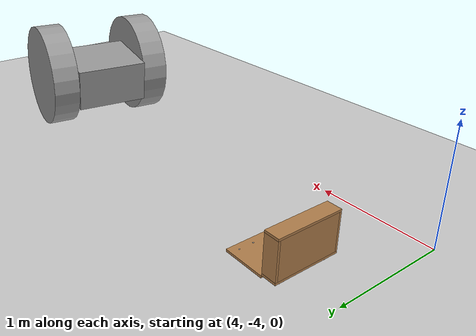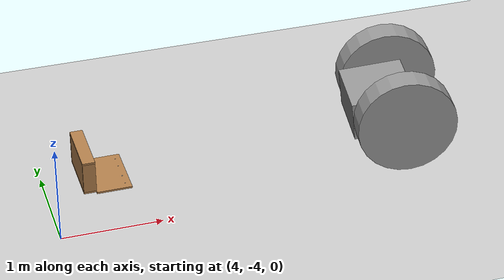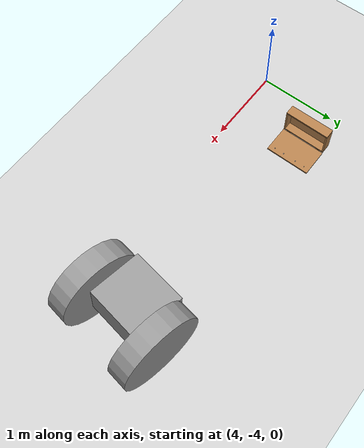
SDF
<sdf version="1.7">
 <world name="default">
  <model name="ground_plane">
   <static>1</static>
   <link name="link">
    <collision name="collision">
     <geometry><plane><normal>0 0 1</normal><size>100 100</size></plane></geometry>
     <surface>
      <contact><collide_bitmask>65535</collide_bitmask></contact>
      <friction><ode><mu>100</mu><mu2>50</mu2></ode></friction>
     </surface>
    </collision>
    <visual name="visual">
     <cast_shadows>0</cast_shadows>
     <geometry><plane><normal>0 0 1</normal><size>100 100</size></plane></geometry>
     <material>
      <script><uri>file://media/materials/scripts/gazebo.material</uri><name>Gazebo/Grey</name></script>
     </material>
    </visual>
   </link>
  </model>
  <model name="wooden_case">
   <link name="base">
    <pose>0 0 0.024 0 -0 0</pose>
    <inertial>
     <pose>-0.022184 0 0.171592 0 -0 0</pose>
     <mass>3.96264</mass>
     <inertia>
      <ixx>0.213536</ixx>
      <ixy>0</ixy>
      <ixz>0.000779377</ixz>
      <iyy>0.0708943</iyy>
      <iyz>0</iyz>
      <izz>0.154604</izz>
     </inertia>
    </inertial>
    <collision name="collision_back">
     <pose>-0.053975 0 0.1778 0 -0 0</pose>
     <geometry><box><size>0.01905 0.5461 0.3175</size></box></geometry>
     <surface>
      <contact>
       <poissons_ratio>0.347</poissons_ratio>
       <elastic_modulus>8.8e+09</elastic_modulus>
       <ode><kp>100000</kp><kd>100</kd><max_vel>100</max_vel><min_depth>0.001</min_depth></ode>
      </contact>
      <friction>
       <torsional>
        <coefficient>1</coefficient>
        <use_patch_radius>0</use_patch_radius>
        <surface_radius>0.01</surface_radius>
       </torsional>
      </friction>
     </surface>
    </collision>
    <visual name="visual_back">
     <pose>-0.053975 0 0.1778 0 -0 0</pose>
     <geometry><box><size>0.01905 0.5461 0.3175</size></box></geometry>
     <material>
      <script><uri>file://media/materials/scripts/gazebo.material</uri><name>Gazebo/Wood</name></script>
     </material>
    </visual>
    <collision name="collision_bottom">
     <pose>0 0 0.009525 0 -0 0</pose>
     <geometry><box><size>0.127 0.5842 0.01905</size></box></geometry>
     <surface>
      <contact>
       <poissons_ratio>0.347</poissons_ratio>
       <elastic_modulus>8.8e+09</elastic_modulus>
       <ode><kp>100000</kp><kd>100</kd><max_vel>100</max_vel><min_depth>0.001</min_depth></ode>
      </contact>
      <friction>
       <torsional>
        <coefficient>1</coefficient>
        <use_patch_radius>0</use_patch_radius>
        <surface_radius>0.01</surface_radius>
       </torsional>
      </friction>
     </surface>
    </collision>
    <visual name="visual_bottom">
     <pose>0 0 0.009525 0 -0 0</pose>
     <geometry><box><size>0.127 0.5842 0.01905</size></box></geometry>
     <material>
      <script><uri>file://media/materials/scripts/gazebo.material</uri><name>Gazebo/Wood</name></script>
     </material>
    </visual>
    <collision name="collision_top">
     <pose>0 0 0.346075 0 -0 0</pose>
     <geometry><box><size>0.127 0.5842 0.01905</size></box></geometry>
     <surface>
      <contact>
       <poissons_ratio>0.347</poissons_ratio>
       <elastic_modulus>8.8e+09</elastic_modulus>
       <ode><kp>100000</kp><kd>100</kd><max_vel>100</max_vel><min_depth>0.001</min_depth></ode>
      </contact>
      <friction>
       <torsional>
        <coefficient>1</coefficient>
        <use_patch_radius>0</use_patch_radius>
        <surface_radius>0.01</surface_radius>
       </torsional>
      </friction>
     </surface>
    </collision>
    <visual name="visual_top">
     <pose>0 0 0.346075 0 -0 0</pose>
     <geometry><box><size>0.127 0.5842 0.01905</size></box></geometry>
     <material>
      <script><uri>file://media/materials/scripts/gazebo.material</uri><name>Gazebo/Wood</name></script>
     </material>
    </visual>
    <collision name="collision_left">
     <pose>0 -0.282575 0.1778 0 -0 0</pose>
     <geometry><box><size>0.127 0.01905 0.3175</size></box></geometry>
     <surface>
      <contact>
       <poissons_ratio>0.347</poissons_ratio>
       <elastic_modulus>8.8e+09</elastic_modulus>
       <ode><kp>100000</kp><kd>100</kd><max_vel>100</max_vel><min_depth>0.001</min_depth></ode>
      </contact>
      <friction>
       <torsional>
        <coefficient>1</coefficient>
        <use_patch_radius>0</use_patch_radius>
        <surface_radius>0.01</surface_radius>
       </torsional>
      </friction>
     </surface>
    </collision>
    <visual name="visual_left">
     <pose>0 -0.282575 0.1778 0 -0 0</pose>
     <geometry><box><size>0.127 0.01905 0.3175</size></box></geometry>
     <material>
      <script><uri>file://media/materials/scripts/gazebo.material</uri><name>Gazebo/Wood</name></script>
     </material>
    </visual>
    <collision name="collision_right">
     <pose>0 0.282575 0.1778 0 -0 0</pose>
     <geometry><box><size>0.127 0.01905 0.3175</size></box></geometry>
     <surface>
      <contact>
       <poissons_ratio>0.347</poissons_ratio>
       <elastic_modulus>8.8e+09</elastic_modulus>
       <ode><kp>100000</kp><kd>100</kd><max_vel>100</max_vel><min_depth>0.001</min_depth></ode>
      </contact>
      <friction>
       <torsional>
        <coefficient>1</coefficient>
        <use_patch_radius>0</use_patch_radius>
        <surface_radius>0.01</surface_radius>
       </torsional>
      </friction>
     </surface>
    </collision>
    <visual name="visual_right">
     <pose>0 0.282575 0.1778 0 -0 0</pose>
     <geometry><box><size>0.127 0.01905 0.3175</size></box></geometry>
     <material>
      <script><uri>file://media/materials/scripts/gazebo.material</uri><name>Gazebo/Wood</name></script>
     </material>
    </visual>
    <collision name="collision_block_left">
     <pose>0.0095 -0.2151 -0.012 0 -0 0</pose>
     <geometry><box><size>0.108 0.05 0.024</size></box></geometry>
     <surface>
      <contact>
       <poissons_ratio>0.347</poissons_ratio>
       <elastic_modulus>8.8e+09</elastic_modulus>
       <ode><kp>100000</kp><kd>100</kd><max_vel>100</max_vel><min_depth>0.001</min_depth></ode>
      </contact>
      <friction>
       <torsional>
        <coefficient>1</coefficient>
        <use_patch_radius>0</use_patch_radius>
        <surface_radius>0.01</surface_radius>
       </torsional>
      </friction>
     </surface>
    </collision>
    <visual name="visual_block_left">
     <pose>0.0095 -0.2151 -0.012 0 -0 0</pose>
     <geometry><box><size>0.108 0.05 0.024</size></box></geometry>
     <material>
      <script><uri>file://media/materials/scripts/gazebo.material</uri><name>Gazebo/Wood</name></script>
     </material>
    </visual>
    <collision name="collision_block_right">
     <pose>0.0095 0.2151 -0.012 0 -0 0</pose>
     <geometry><box><size>0.108 0.05 0.024</size></box></geometry>
     <surface>
      <contact>
       <poissons_ratio>0.347</poissons_ratio>
       <elastic_modulus>8.8e+09</elastic_modulus>
       <ode><kp>100000</kp><kd>100</kd><max_vel>100</max_vel><min_depth>0.001</min_depth></ode>
      </contact>
      <friction>
       <torsional>
        <coefficient>1</coefficient>
        <use_patch_radius>0</use_patch_radius>
        <surface_radius>0.01</surface_radius>
       </torsional>
      </friction>
     </surface>
    </collision>
    <visual name="visual_block_right">
     <pose>0.0095 0.2151 -0.012 0 -0 0</pose>
     <geometry><box><size>0.108 0.05 0.024</size></box></geometry>
     <material>
      <script><uri>file://media/materials/scripts/gazebo.material</uri><name>Gazebo/Wood</name></script>
     </material>
    </visual>
   </link>
   <link name="lid">
    <pose>0.243775 0 0.009525 0 -0 0</pose>
    <inertial>
     <mass>1.97874</mass>
     <inertia>
      <ixx>0.0563367</ixx>
      <ixy>0</ixy>
      <ixz>0</ixz>
      <iyy>0.020911</iyy>
      <iyz>0</iyz>
      <izz>0.0771281</izz>
     </inertia>
    </inertial>
    <collision name="collision">
     <geometry><box><size>0.3556 0.5842 0.01905</size></box></geometry>
     <surface>
      <contact>
       <poissons_ratio>0.347</poissons_ratio>
       <elastic_modulus>8.8e+09</elastic_modulus>
       <ode><kp>100000</kp><kd>100</kd><max_vel>100</max_vel><min_depth>0.001</min_depth></ode>
      </contact>
      <friction>
       <torsional>
        <coefficient>1</coefficient>
        <use_patch_radius>0</use_patch_radius>
        <surface_radius>0.01</surface_radius>
       </torsional>
      </friction>
     </surface>
    </collision>
    <visual name="visual">
     <geometry><box><size>0.3556 0.5842 0.01905</size></box></geometry>
     <material>
      <script><uri>file://media/materials/scripts/gazebo.material</uri><name>Gazebo/Wood</name></script>
     </material>
    </visual>
    <visual name="tee_nut_1">
     <pose>0.122 -0.216 0 0 -0 0</pose>
     <geometry><cylinder><radius>0.00635</radius><length>0.0192405</length></cylinder></geometry>
     <material>
      <script><uri>file://media/materials/scripts/gazebo.material</uri><name>Gazebo/Grey</name></script>
     </material>
    </visual>
    <visual name="tee_nut_2">
     <pose>0.122 -0.088 0 0 -0 0</pose>
     <geometry><cylinder><radius>0.00635</radius><length>0.0192405</length></cylinder></geometry>
     <material>
      <script><uri>file://media/materials/scripts/gazebo.material</uri><name>Gazebo/Grey</name></script>
     </material>
    </visual>
    <visual name="tee_nut_3">
     <pose>0.122 0.088 0 0 -0 0</pose>
     <geometry><cylinder><radius>0.00635</radius><length>0.0192405</length></cylinder></geometry>
     <material>
      <script><uri>file://media/materials/scripts/gazebo.material</uri><name>Gazebo/Grey</name></script>
     </material>
    </visual>
    <visual name="tee_nut_4">
     <pose>0.122 0.216 0 0 -0 0</pose>
     <geometry><cylinder><radius>0.00635</radius><length>0.0192405</length></cylinder></geometry>
     <material>
      <script><uri>file://media/materials/scripts/gazebo.material</uri><name>Gazebo/Grey</name></script>
     </material>
    </visual>
   </link>
   <joint name="lid_hinge" type="revolute">
    <pose>-0.1778 0 0.01905 0 -0 0</pose>
    <parent>base</parent>
    <child>lid</child>
    <axis>
     <xyz>0 1 0</xyz>
     <limit><upper>0.523599</upper><lower>-1.5708</lower></limit>
     <dynamics><spring_reference>0</spring_reference><spring_stiffness>0</spring_stiffness></dynamics>
    </axis>
   </joint>
   <pose>4.4225 -3.09743 -0.001057 0 -0.000425 -1e-06</pose>
  </model>
  <model name="bigwheel_0_clone">
   <link name="link_0">
    <pose>-0.059968 0.467368 0 0 -0 0</pose>
    <inertial>
     <mass>1</mass>
     <inertia><ixx>0.145833</ixx><ixy>0</ixy><ixz>0</ixz><iyy>0.145833</iyy><iyz>0</iyz><izz>0.125</izz></inertia>
     <pose>0 0 0.5 1.5707 -0 0</pose>
    </inertial>
    <visual name="visual">
     <pose>0 0 0 1.5707 -0 0</pose>
     <geometry><cylinder><radius>0.5</radius><length>0.25</length></cylinder></geometry>
     <material>
      <lighting>1</lighting>
      <script><uri>file://media/materials/scripts/gazebo.material</uri><name>Gazebo/Grey</name></script>
      <shader type="pixel"><normal_map>__default__</normal_map></shader>
      <ambient>0.3 0.3 0.3 1</ambient>
      <diffuse>0.7 0.7 0.7 1</diffuse>
      <specular>0.01 0.01 0.01 1</specular>
      <emissive>0 0 0 1</emissive>
     </material>
    </visual>
    <collision name="collision">
     <pose>0 0 0 1.5707 -0 0</pose>
     <geometry><cylinder><radius>0.5</radius><length>0.25</length></cylinder></geometry>
     <surface>
      <friction>
       <ode><mu>1</mu><mu2>1</mu2><fdir1>0 0 0</fdir1><slip1>0</slip1><slip2>0</slip2></ode>
       <torsional>
        <coefficient>1</coefficient>
        <patch_radius>0</patch_radius>
        <surface_radius>0</surface_radius>
        <use_patch_radius>1</use_patch_radius>
        <ode><slip>0</slip></ode>
       </torsional>
      </friction>
      <bounce><restitution_coefficient>0</restitution_coefficient><threshold>1e+06</threshold></bounce>
      <contact>
       <collide_without_contact>0</collide_without_contact>
       <collide_without_contact_bitmask>1</collide_without_contact_bitmask>
       <collide_bitmask>1</collide_bitmask>
       <ode>
        <soft_cfm>0</soft_cfm>
        <soft_erp>0.2</soft_erp>
        <kp>1e+13</kp>
        <kd>1</kd>
        <max_vel>0.01</max_vel>
        <min_depth>0</min_depth>
       </ode>
       <bullet>
        <split_impulse>1</split_impulse>
        <split_impulse_penetration_threshold>-0.01</split_impulse_penetration_threshold>
        <soft_cfm>0</soft_cfm>
        <soft_erp>0.2</soft_erp>
        <kp>1e+13</kp>
        <kd>1</kd>
       </bullet>
      </contact>
     </surface>
    </collision>
   </link>
   <link name="link_0_clone">
    <pose>-0.059968 -0.467369 0 0 -0 0</pose>
    <inertial>
     <mass>1</mass>
     <inertia><ixx>0.145833</ixx><ixy>0</ixy><ixz>0</ixz><iyy>0.145833</iyy><iyz>0</iyz><izz>0.125</izz></inertia>
     <pose>0 0 0.5 1.5707 -0 0</pose>
    </inertial>
    <visual name="visual">
     <pose>0 0 0 1.5707 -0 0</pose>
     <geometry><cylinder><radius>0.5</radius><length>0.25</length></cylinder></geometry>
     <material>
      <lighting>1</lighting>
      <script><uri>file://media/materials/scripts/gazebo.material</uri><name>Gazebo/Grey</name></script>
      <shader type="pixel"><normal_map>__default__</normal_map></shader>
      <ambient>0.3 0.3 0.3 1</ambient>
      <diffuse>0.7 0.7 0.7 1</diffuse>
      <specular>0.01 0.01 0.01 1</specular>
      <emissive>0 0 0 1</emissive>
     </material>
    </visual>
    <collision name="collision">
     <pose>0 0 0 1.5707 -0 0</pose>
     <geometry><cylinder><radius>0.5</radius><length>0.25</length></cylinder></geometry>
     <surface>
      <friction>
       <ode><mu>1</mu><mu2>1</mu2><fdir1>0 0 0</fdir1><slip1>0</slip1><slip2>0</slip2></ode>
       <torsional>
        <coefficient>1</coefficient>
        <patch_radius>0</patch_radius>
        <surface_radius>0</surface_radius>
        <use_patch_radius>1</use_patch_radius>
        <ode><slip>0</slip></ode>
       </torsional>
      </friction>
      <bounce><restitution_coefficient>0</restitution_coefficient><threshold>1e+06</threshold></bounce>
      <contact>
       <collide_without_contact>0</collide_without_contact>
       <collide_without_contact_bitmask>1</collide_without_contact_bitmask>
       <collide_bitmask>1</collide_bitmask>
       <ode>
        <soft_cfm>0</soft_cfm>
        <soft_erp>0.2</soft_erp>
        <kp>1e+13</kp>
        <kd>1</kd>
        <max_vel>0.01</max_vel>
        <min_depth>0</min_depth>
       </ode>
       <bullet>
        <split_impulse>1</split_impulse>
        <split_impulse_penetration_threshold>-0.01</split_impulse_penetration_threshold>
        <soft_cfm>0</soft_cfm>
        <soft_erp>0.2</soft_erp>
        <kp>1e+13</kp>
        <kd>1</kd>
       </bullet>
      </contact>
     </surface>
    </collision>
   </link>
   <link name="link_1">
    <pose>0.119938 0 0 0 -0 0</pose>
    <inertial>
     <mass>0.17574</mass>
     <inertia>
      <ixx>0.00921905</ixx>
      <ixy>0</ixy>
      <ixz>0</ixz>
      <iyy>0.00835657</iyy>
      <iyz>0</iyz>
      <izz>0.0128667</izz>
     </inertia>
    </inertial>
    <visual name="visual">
     <geometry><box><size>0.640188 0.684641 0.400961</size></box></geometry>
     <material>
      <lighting>1</lighting>
      <script><uri>file://media/materials/scripts/gazebo.material</uri><name>Gazebo/Grey</name></script>
      <shader type="pixel"/>
      <ambient>0.3 0.3 0.3 1</ambient>
      <diffuse>0.7 0.7 0.7 1</diffuse>
      <specular>0.01 0.01 0.01 1</specular>
      <emissive>0 0 0 1</emissive>
     </material>
    </visual>
    <collision name="collision">
     <geometry><box><size>0.640188 0.684641 0.400961</size></box></geometry>
     <surface>
      <friction>
       <ode><mu>1</mu><mu2>1</mu2><fdir1>0 0 0</fdir1><slip1>0</slip1><slip2>0</slip2></ode>
       <torsional>
        <coefficient>1</coefficient>
        <patch_radius>0</patch_radius>
        <surface_radius>0</surface_radius>
        <use_patch_radius>1</use_patch_radius>
        <ode><slip>0</slip></ode>
       </torsional>
      </friction>
      <bounce><restitution_coefficient>0</restitution_coefficient><threshold>1e+06</threshold></bounce>
      <contact>
       <collide_without_contact>0</collide_without_contact>
       <collide_without_contact_bitmask>1</collide_without_contact_bitmask>
       <collide_bitmask>1</collide_bitmask>
       <ode>
        <soft_cfm>0</soft_cfm>
        <soft_erp>0.2</soft_erp>
        <kp>1e+13</kp>
        <kd>1</kd>
        <max_vel>0.01</max_vel>
        <min_depth>0</min_depth>
       </ode>
       <bullet>
        <split_impulse>1</split_impulse>
        <split_impulse_penetration_threshold>-0.01</split_impulse_penetration_threshold>
        <soft_cfm>0</soft_cfm>
        <soft_erp>0.2</soft_erp>
        <kp>1e+13</kp>
        <kd>1</kd>
       </bullet>
      </contact>
     </surface>
    </collision>
   </link>
   <joint name="link_1_JOINT_0" type="revolute">
    <parent>link_1</parent>
    <child>link_0</child>
    <axis>
     <xyz>0 0 1</xyz>
     <limit>
      <lower>-1.79769e+308</lower>
      <upper>1.79769e+308</upper>
      <effort>-1</effort>
      <velocity>-1</velocity>
     </limit>
     <dynamics>
      <spring_reference>0</spring_reference>
      <spring_stiffness>0</spring_stiffness>
      <damping>0</damping>
     </dynamics>
    </axis>
    <physics>
     <ode><limit><cfm>0</cfm><erp>0.2</erp></limit><suspension><cfm>0</cfm><erp>0.2</erp></suspension></ode>
    </physics>
   </joint>
   <joint name="link_1_JOINT_1" type="revolute">
    <parent>link_1</parent>
    <child>link_0_clone</child>
    <axis>
     <xyz>0 0 1</xyz>
     <limit>
      <lower>-1.79769e+308</lower>
      <upper>1.79769e+308</upper>
      <effort>-1</effort>
      <velocity>-1</velocity>
     </limit>
     <dynamics>
      <spring_reference>0</spring_reference>
      <spring_stiffness>0</spring_stiffness>
      <damping>0</damping>
     </dynamics>
    </axis>
    <physics>
     <ode><limit><cfm>0</cfm><erp>0.2</erp></limit><suspension><cfm>0</cfm><erp>0.2</erp></suspension></ode>
    </physics>
   </joint>
   <static>0</static>
   <pose>7.55695 -3.28457 0.493507 -3.14149 0.109334 2.99756</pose>
  </model>
 </world>
</sdf>
